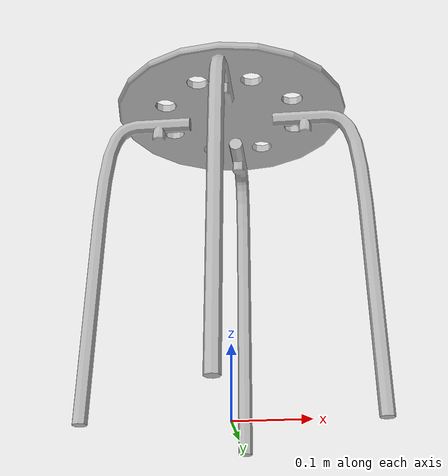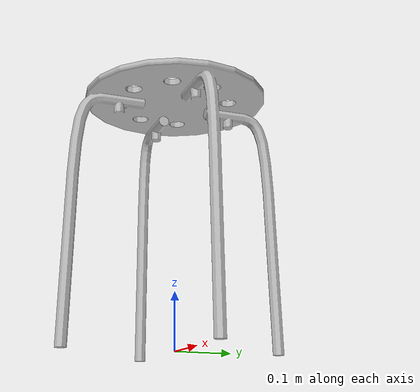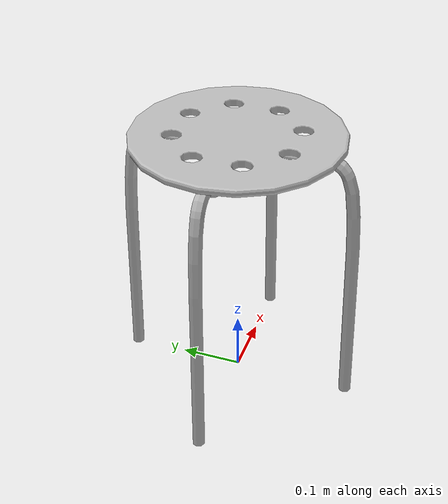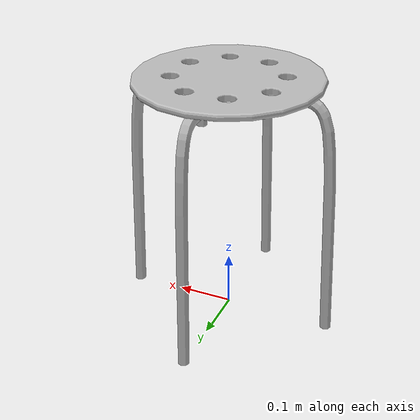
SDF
<?xml version='1.0'?>
<sdf version='1.4'>
  <model name='s__724'>
    <pose>0 0 0 0 0 0</pose>
    <static>true</static>
    <link name='link'>
      <collision name='collision'>
        <pose>0 0 0 0 0 0</pose>
        <geometry>
          <box>
            <size>0.399998 0.399998 2</size>
          </box>
        </geometry>
      </collision>
      <visual name='visual'>
        <pose>0 0 0 0 0 0</pose>
        <geometry>
          <mesh><uri>model://s__724/s__724.dae</uri></mesh>
        </geometry>
      </visual>
    </link>
  </model>
</sdf>
